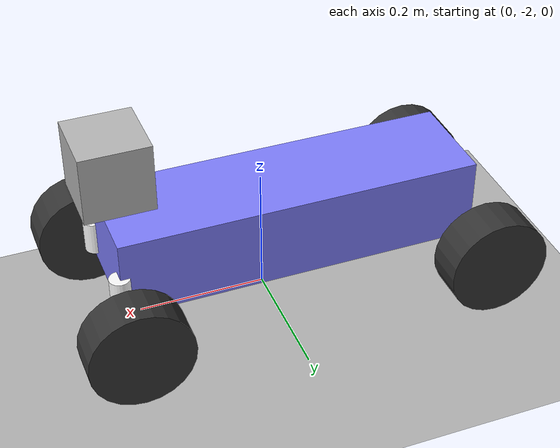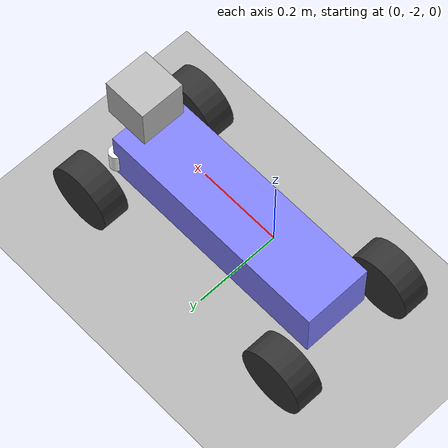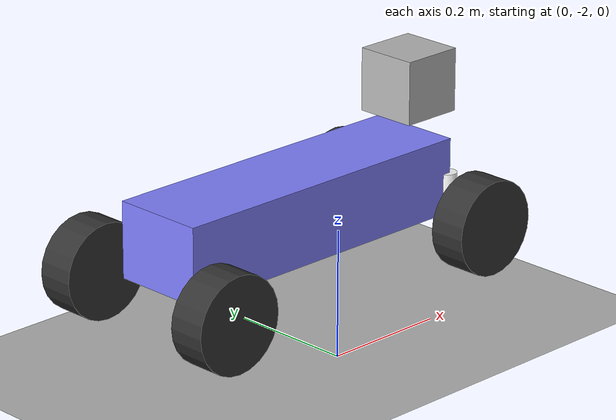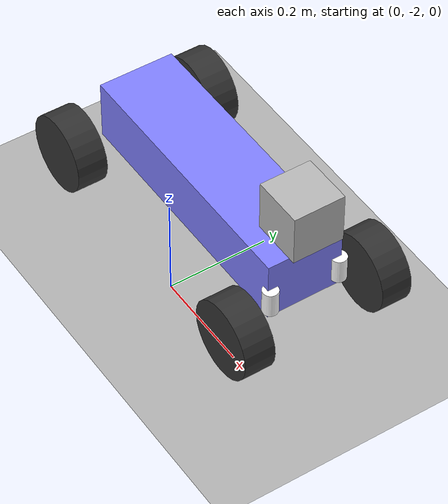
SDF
<?xml version='1.0'?>
<sdf version='1.9'>
  <world name="Line_track">

    <physics name="1ms" type="ignored">
      <max_step_size>0.001</max_step_size>
      <real_time_factor>1.0</real_time_factor>
    </physics>
    <plugin
      filename="ignition-gazebo-physics-system"
      name="gz::sim::systems::Physics">
    </plugin>
    <plugin
      filename="ignition-gazebo-user-commands-system"
      name="gz::sim::systems::UserCommands">
    </plugin>
    <plugin
      filename="ignition-gazebo-scene-broadcaster-system"
      name="gz::sim::systems::SceneBroadcaster">
    </plugin>
    <plugin name='gz::sim::systems::Sensors' filename='ignition-gazebo-sensors-system'>
      <render_engine>ogre2</render_engine>
    </plugin>
    <light type="directional" name="sun">
      <cast_shadows>true</cast_shadows>
      <pose>0 0 10 0 0 0</pose>
      <diffuse>1 1 1 1</diffuse>
      <specular>0.5 0.5 0.5 1</specular>
      <attenuation>
        <range>1000</range>
        <constant>0.9</constant>
        <linear>0.01</linear>
        <quadratic>0.001</quadratic>
      </attenuation>
      <direction>-0.5 0.1 -0.9</direction>
    </light>

    <model name="ground_plane">
      <static>true</static>
      <link name="link">
        <collision name="collision">
          <geometry>
            <plane>
              <normal>0 0 1</normal>
              <size>1 1</size>
            </plane>
          </geometry>
          <surface>
            <friction>
              <ode>
                <mu>50</mu>
              </ode>
            </friction>
          </surface>
        </collision>
        <visual name="visual">
          <geometry>
            <plane>
              <normal>0 0 1</normal>
              <size>6 6</size>
            </plane>
          </geometry>
          <material>
            <ambient>0.1 0.1 0.1 0.1</ambient>
            <diffuse>0.7 0.7 0.7 1</diffuse>
   	    <pbr>
   	      <metal>
   	        <albedo_map>track_line_v1.png</albedo_map>
   	        <normal_map>track_line_v1.png</normal_map>
   	      </metal>
   	    </pbr>
          </material>
        </visual>
      </link>
      <static>1</static>
    </model>

    <model name="JetTec_Robot">
      <pose>-1.0 -0.90 0.15 0 0 0</pose>

      <!-- Châssis principal -->
      <link name="chassis">
        <pose>1 -1.0 0.06 0 0 0</pose>
        <inertial>
          <mass>2.5</mass>
          <inertia>
            <ixx>0.126164</ixx>
            <ixy>0</ixy>
            <ixz>0</ixz>
            <iyy>0.416519</iyy>
            <iyz>0</iyz>
            <izz>0.481014</izz>
          </inertia>
        </inertial>
        <visual name="visual">
          <geometry>
            <box>
              <size>0.53 0.15 0.12</size>
            </box>
          </geometry>
          <material>
            <ambient>0.5 0.5 1.0 1</ambient>
            <diffuse>0.5 0.5 1.0 1</diffuse>
            <specular>0.0 0.0 1.0 1</specular>
          </material>
        </visual>
        <collision name="collision">
          <geometry>
            <box>
              <size>0.53 0.15 0.12</size>
            </box>
          </geometry>
        </collision>
      </link>

      <!-- Lien pour la caméra , avec corps physique et visuel -->

      <link name='rgbd'>
        <pose>1.25 -1.0 0.20 0 -0 0</pose>
        <inertial>
          <mass>0.10000000000000001</mass>
          <inertia>
            <ixx>0.00016666700000000001</ixx>
            <iyy>0.00016666700000000001</iyy>
            <izz>0.00016666700000000001</izz>
            <ixy>0</ixy>
            <ixz>0</ixz>
            <iyz>0</iyz>
          </inertia>
          <pose>0 0 0 0 -0 0</pose>
        </inertial>
        <collision name='collision'>
          <geometry>
            <box>
              <size>0.1 0.1 0.1</size>
            </box>
          </geometry>
          <surface>
            <friction>
              <ode/>
            </friction>
            <bounce/>
            <contact/>
          </surface>
        </collision>
        <visual name='visual'>
          <geometry>
            <box>
              <size>0.1 0.1 0.1</size>
            </box>
          </geometry>
        </visual>
        <sensor name='rgbd_camera' type='rgbd_camera'>
          <camera>
            <horizontal_fov>2</horizontal_fov>
            <image>
              <width>800</width>
              <height>600</height>
            </image>
            <clip>
              <near>0.10000000000000001</near>
              <far>100</far>
            </clip>
          </camera>
          <always_on>true</always_on>
          <update_rate>10</update_rate>
          <visualize>true</visualize>
          <topic>/rgbd_camera</topic>
          <enable_metrics>true</enable_metrics>
        </sensor>
        <enable_wind>false</enable_wind>
      </link>

      <!-- Roues avant gauche -->
      <link name="front_left_wheel">
        <pose relative_to="chassis">0.265 0.14 -0.06 -1.5707 0 0</pose>
        <inertial>
          <mass>0.3</mass>
          <inertia>
            <ixx>0.145833</ixx>
            <ixy>0</ixy>
            <ixz>0</ixz>
            <iyy>0.145833</iyy>
            <iyz>0</iyz>
            <izz>0.125</izz>
          </inertia>
        </inertial>
        <visual name="visual">
          <geometry>
            <cylinder>
              <length>0.06</length>
              <radius>0.075</radius>
            </cylinder>
          </geometry>
          <material>
            <ambient>0.2 0.2 0.2 1</ambient>
            <diffuse>0.2 0.2 0.2 1</diffuse>
            <specular>0.2 0.2 0.2 1</specular>
          </material>
        </visual>
        <collision name="collision">
          <geometry>
            <cylinder>
              <length>0.06</length>
              <radius>0.075</radius>
            </cylinder>
          </geometry>
          <surface>
            <friction>
              <ode>
                <mu>0.5</mu>
                <mu2>1.0</mu2>
                <fdir1>0 0 1</fdir1>
              </ode>
            </friction>
          </surface>
        </collision>
      </link>

      <!-- Roues arrière gauche -->
      <link name="rear_left_wheel">
        <pose relative_to="chassis">-0.265 0.14 -0.06 -1.5707 0 0</pose>
        <inertial>
          <mass>0.3</mass>
          <inertia>
            <ixx>0.145833</ixx>
            <ixy>0</ixy>
            <ixz>0</ixz>
            <iyy>0.145833</iyy>
            <iyz>0</iyz>
            <izz>0.125</izz>
          </inertia>
        </inertial>
        <visual name="visual">
          <geometry>
            <cylinder>
              <length>0.06</length>
              <radius>0.075</radius>
            </cylinder>
          </geometry>
          <material>
            <ambient>0.2 0.2 0.2 1</ambient>
            <diffuse>0.2 0.2 0.2 1</diffuse>
            <specular>0.2 0.2 0.2 1</specular>
          </material>
        </visual>
        <collision name="collision">
          <geometry>
            <cylinder>
              <length>0.06</length>
              <radius>0.075</radius>
            </cylinder>
          </geometry>
          <surface>
            <friction>
              <ode>
                <mu>0.5</mu>
                <mu2>1.0</mu2>
                <fdir1>0 0 1</fdir1>
              </ode>
            </friction>
          </surface>
        </collision>
      </link>

      <!-- Roues avant droite -->
      <link name="front_right_wheel">
        <pose relative_to="chassis">0.265 -0.14 -0.06 -1.5707 0 0</pose>
        <inertial>
          <mass>0.3</mass>
          <inertia>
            <ixx>0.145833</ixx>
            <ixy>0</ixy>
            <ixz>0</ixz>
            <iyy>0.145833</iyy>
            <iyz>0</iyz>
            <izz>0.125</izz>
          </inertia>
        </inertial>
        <visual name="visual">
          <geometry>
            <cylinder>
              <length>0.06</length>
              <radius>0.075</radius>
            </cylinder>
          </geometry>
          <material>
            <ambient>0.2 0.2 0.2 1</ambient>
            <diffuse>0.2 0.2 0.2 1</diffuse>
            <specular>0.2 0.2 0.2 1</specular>
          </material>
        </visual>
        <collision name="collision">
          <geometry>
            <cylinder>
              <length>0.06</length>
              <radius>0.075</radius>
            </cylinder>
          </geometry>
          <surface>
            <friction>
              <ode>
                <mu>0.5</mu>
                <mu2>1.0</mu2>
                <fdir1>0 0 1</fdir1>
              </ode>
            </friction>
          </surface>
        </collision>
      </link>

      <!-- Roues arrière droite -->
      <link name="rear_right_wheel">
        <pose relative_to="chassis">-0.265 -0.14 -0.06 -1.5707 0 0</pose>
        <inertial>
          <mass>0.3</mass>
          <inertia>
            <ixx>0.145833</ixx>
            <ixy>0</ixy>
            <ixz>0</ixz>
            <iyy>0.145833</iyy>
            <iyz>0</iyz>
            <izz>0.125</izz>
          </inertia>
        </inertial>
        <visual name="visual">
          <geometry>
            <cylinder>
              <length>0.06</length>
              <radius>0.075</radius>
            </cylinder>
          </geometry>
          <material>
            <ambient>0.2 0.2 0.2 1</ambient>
            <diffuse>0.2 0.2 0.2 1</diffuse>
            <specular>0.2 0.2 0.2 1</specular>
          </material>
        </visual>
        <collision name="collision">
          <geometry>
            <cylinder>
              <length>0.06</length>
              <radius>0.075</radius>
            </cylinder>
          </geometry>
          <surface>
            <friction>
              <ode>
                <mu>0.5</mu>
                <mu2>1.0</mu2>
                <fdir1>0 0 1</fdir1>
              </ode>
            </friction>
          </surface>
        </collision>
      </link>

      <!-- Liens de direction pour les roues avant -->
      <link name="front_left_wheel_steering_link">
        <pose relative_to="chassis">0.265 0.07 -0.02 0 0 0</pose>
        <inertial>
          <mass>0.5</mass>
          <inertia>
            <ixx>0.0153</ixx>
            <iyy>0.025</iyy>
            <izz>0.0153</izz>
          </inertia>
        </inertial>
        <visual name="steering_link_visual">
          <pose>0 0 0 0 0 0</pose>
          <geometry>
            <cylinder>
              <length>0.05</length>
              <radius>0.015</radius>
            </cylinder>
          </geometry>
          <material>
            <ambient>1 1 1</ambient>
            <diffuse>1 1 1</diffuse>
          </material>
        </visual>
      </link>

      <link name="front_right_wheel_steering_link">
        <pose relative_to="chassis">0.265 -0.07 -0.02 0 0 0</pose>
        <inertial>
          <mass>0.5</mass>
          <inertia>
            <ixx>0.0153</ixx>
            <iyy>0.025</iyy>
            <izz>0.0153</izz>
          </inertia>
        </inertial>
        <visual name="steering_link_visual">
          <pose>0 0 0 0 0 0</pose>
          <geometry>
            <cylinder>
              <length>0.05</length>
              <radius>0.015</radius>
            </cylinder>
          </geometry>
          <material>
            <ambient>1 1 1</ambient>
            <diffuse>1 1 1</diffuse>
          </material>
        </visual>
      </link>

      <!-- Joints pour la direction -->
      <joint name="front_left_wheel_steering_joint" type="revolute">
        <child>front_left_wheel_steering_link</child>
        <parent>chassis</parent>
        <axis>
          <xyz>0 0 1</xyz>
          <limit>
            <lower>-0.6</lower>
            <upper>0.6</upper>
            <velocity>1.0</velocity>
            <effort>25</effort>
          </limit>
          <use_parent_model_frame>1</use_parent_model_frame>
        </axis>
      </joint>

      <joint name="front_right_wheel_steering_joint" type="revolute">
        <parent>chassis</parent>
        <child>front_right_wheel_steering_link</child>
        <axis>
          <xyz>0 0 1</xyz>
          <limit>
            <lower>-0.6</lower>
            <upper>0.6</upper>
            <velocity>1.0</velocity>
            <effort>25</effort>
          </limit>
        </axis>
      </joint>

      <!-- Joints pour les roues -->
      <joint name="front_left_wheel_joint" type="revolute">
        <parent>front_left_wheel_steering_link</parent>
        <child>front_left_wheel</child>
        <axis>
          <xyz>0 0 1</xyz>
          <limit>
            <lower>-1.79769e+308</lower>
            <upper>1.79769e+308</upper>
          </limit>
        </axis>
      </joint>

      <joint name="front_right_wheel_joint" type="revolute">
        <parent>front_right_wheel_steering_link</parent>
        <child>front_right_wheel</child>
        <axis>
          <xyz>0 0 1</xyz>
          <limit>
            <lower>-1.79769e+308</lower>
            <upper>1.79769e+308</upper>
          </limit>
        </axis>
      </joint>

      <joint name="rear_left_wheel_joint" type="revolute">
        <parent>chassis</parent>
        <child>rear_left_wheel</child>
        <axis>
          <xyz>0 0 1</xyz>
          <limit>
            <lower>-1.79769e+308</lower>
            <upper>1.79769e+308</upper>
          </limit>
        </axis>
      </joint>

      <joint name="rear_right_wheel_joint" type="revolute">
        <parent>chassis</parent>
        <child>rear_right_wheel</child>
        <axis>
          <xyz>0 0 1</xyz>
          <limit>
            <lower>-1.79769e+308</lower>
            <upper>1.79769e+308</upper>
          </limit>
        </axis>
      </joint>

      <!-- Joint pour fixer la caméra au châssis -->
      <joint name="camera_joint" type="fixed">
        <parent>chassis</parent>
        <child>rgbd</child>
        <pose>0 0 0 0 0 0</pose>
      </joint>

      <!-- Plugin de commande Ackermann -->
      <plugin filename="ignition-gazebo-ackermann-steering-system" name="gz::sim::systems::AckermannSteering">
 	<topic>/cmd_vel</topic>
  	<left_joint>front_left_wheel_joint</left_joint>
  	<left_joint>rear_left_wheel_joint</left_joint>
  	<right_joint>front_right_wheel_joint</right_joint>
  	<right_joint>rear_right_wheel_joint</right_joint>
  	<left_steering_joint>front_left_wheel_steering_joint</left_steering_joint>
  	<right_steering_joint>front_right_wheel_steering_joint</right_steering_joint>
  	<kingpin_width>1.0</kingpin_width>
 	<steering_limit>0.5</steering_limit>
  	<wheel_base>1.0</wheel_base>
  	<wheel_separation>1.25</wheel_separation>
  	<wheel_radius>0.3</wheel_radius>
  	<min_velocity>-3</min_velocity>
  	<max_velocity>3</max_velocity>
  	<min_acceleration>-3</min_acceleration>
  	<max_acceleration>3</max_acceleration>
      </plugin>

      <!-- joint state publisher plugin -->
        <plugin
            filename="gz-sim-joint-state-publisher-system"
            name="gz::sim::systems::JointStatePublisher">
            <joint_name>front_left_wheel_steering_joint</joint_name>
            <joint_name>front_right_wheel_steering_joint</joint_name>
            <joint_name>front_left_wheel_joint</joint_name>
            <joint_name>front_right_wheel_joint</joint_name>
            <joint_name>rear_left_wheel_joint</joint_name>
            <joint_name>rear_right_wheel_joint</joint_name>
            <joint_name>camera_joint</joint_name>
        </plugin>

    </model>

  </world>
</sdf>
